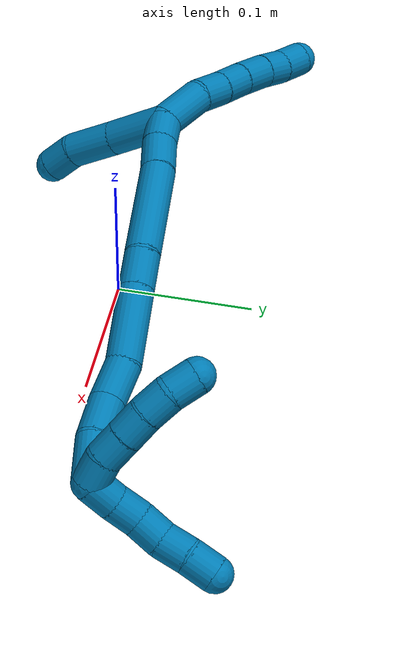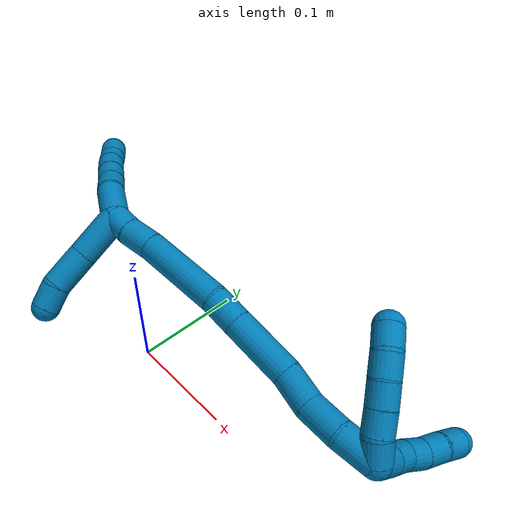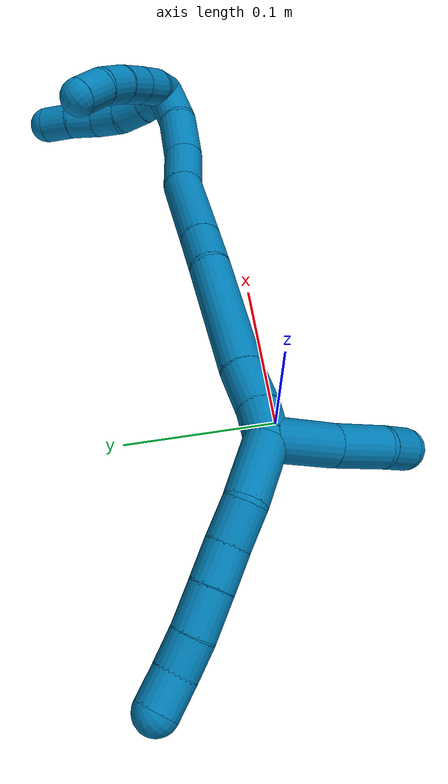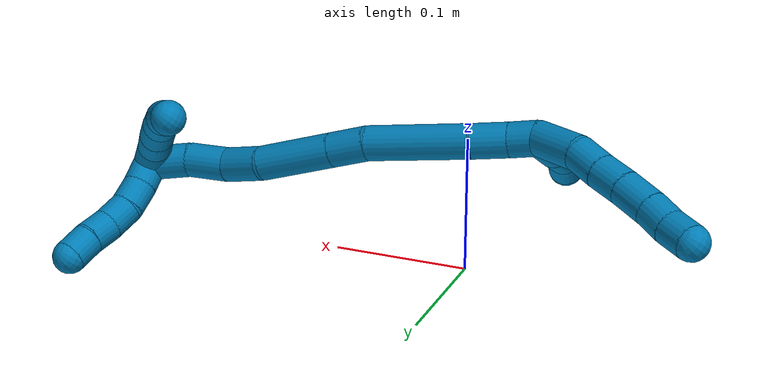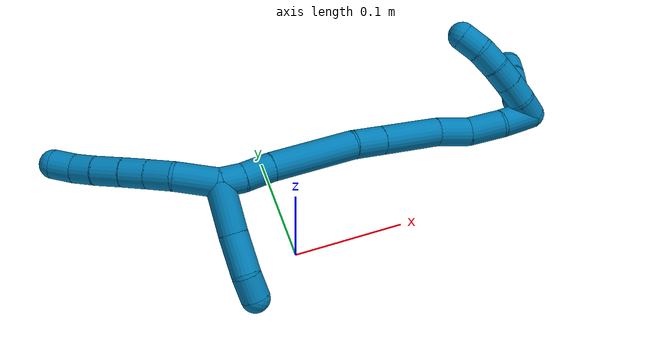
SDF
<sdf version="1.7">
 <world name="default">
  <model name="9">
   <static>0</static>
   <link name="9">
    <collision name="collision-cylinder-e_1_2_8">
     <pose>-0.014139 0.011384 -0.00466 -1.95937 -0.854812 1.1925</pose>
     <geometry><cylinder><radius>0.0125</radius><length>0.037483</length></cylinder></geometry>
     <surface>
      <friction><ode><mu>1.16</mu><mu2>1.16</mu2><slip1>0</slip1><slip2>0</slip2></ode></friction>
      <contact><ode><kp>1e+06</kp><kd>1</kd><max_vel>0</max_vel><min_depth>0.001</min_depth></ode></contact>
     </surface>
    </collision>
    <visual name="visual-cylinder-e_1_2_8">
     <pose>-0.014139 0.011384 -0.00466 -1.95937 -0.854812 1.1925</pose>
     <geometry><cylinder><radius>0.0125</radius><length>0.037483</length></cylinder></geometry>
     <material><ambient>0 0.490196 0.709804 1</ambient></material>
    </visual>
    <collision name="collision-cylinder-e_2_8_9">
     <pose>-0.034957 0.031796 -0.01325 -1.98125 -0.595994 0.876466</pose>
     <geometry><cylinder><radius>0.0125</radius><length>0.023794</length></cylinder></geometry>
     <surface>
      <friction><ode><mu>1.16</mu><mu2>1.16</mu2><slip1>0</slip1><slip2>0</slip2></ode></friction>
      <contact><ode><kp>1e+06</kp><kd>1</kd><max_vel>0</max_vel><min_depth>0.001</min_depth></ode></contact>
     </surface>
    </collision>
    <visual name="visual-cylinder-e_2_8_9">
     <pose>-0.034957 0.031796 -0.01325 -1.98125 -0.595994 0.876466</pose>
     <geometry><cylinder><radius>0.0125</radius><length>0.023794</length></cylinder></geometry>
     <material><ambient>0 0.490196 0.709804 1</ambient></material>
    </visual>
    <collision name="collision-cylinder-e_3_9_10">
     <pose>-0.048427 0.049059 -0.020956 -2.00094 -0.643329 0.958289</pose>
     <geometry><cylinder><radius>0.0125</radius><length>0.022646</length></cylinder></geometry>
     <surface>
      <friction><ode><mu>1.16</mu><mu2>1.16</mu2><slip1>0</slip1><slip2>0</slip2></ode></friction>
      <contact><ode><kp>1e+06</kp><kd>1</kd><max_vel>0</max_vel><min_depth>0.001</min_depth></ode></contact>
     </surface>
    </collision>
    <visual name="visual-cylinder-e_3_9_10">
     <pose>-0.048427 0.049059 -0.020956 -2.00094 -0.643329 0.958289</pose>
     <geometry><cylinder><radius>0.0125</radius><length>0.022646</length></cylinder></geometry>
     <material><ambient>0 0.490196 0.709804 1</ambient></material>
    </visual>
    <collision name="collision-cylinder-e_4_10_11">
     <pose>-0.062351 0.066783 -0.029162 -2.00738 -0.597825 0.901248</pose>
     <geometry><cylinder><radius>0.0125</radius><length>0.02534</length></cylinder></geometry>
     <surface>
      <friction><ode><mu>1.16</mu><mu2>1.16</mu2><slip1>0</slip1><slip2>0</slip2></ode></friction>
      <contact><ode><kp>1e+06</kp><kd>1</kd><max_vel>0</max_vel><min_depth>0.001</min_depth></ode></contact>
     </surface>
    </collision>
    <visual name="visual-cylinder-e_4_10_11">
     <pose>-0.062351 0.066783 -0.029162 -2.00738 -0.597825 0.901248</pose>
     <geometry><cylinder><radius>0.0125</radius><length>0.02534</length></cylinder></geometry>
     <material><ambient>0 0.490196 0.709804 1</ambient></material>
    </visual>
    <collision name="collision-cylinder-e_5_11_12">
     <pose>-0.074559 0.08432 -0.036796 -1.94984 -0.530182 0.761623</pose>
     <geometry><cylinder><radius>0.0125</radius><length>0.02008</length></cylinder></geometry>
     <surface>
      <friction><ode><mu>1.16</mu><mu2>1.16</mu2><slip1>0</slip1><slip2>0</slip2></ode></friction>
      <contact><ode><kp>1e+06</kp><kd>1</kd><max_vel>0</max_vel><min_depth>0.001</min_depth></ode></contact>
     </surface>
    </collision>
    <visual name="visual-cylinder-e_5_11_12">
     <pose>-0.074559 0.08432 -0.036796 -1.94984 -0.530182 0.761623</pose>
     <geometry><cylinder><radius>0.0125</radius><length>0.02008</length></cylinder></geometry>
     <material><ambient>0 0.490196 0.709804 1</ambient></material>
    </visual>
    <collision name="collision-cylinder-e_6_12_6">
     <pose>-0.085977 0.100177 -0.042342 -1.86208 -0.660982 0.863961</pose>
     <geometry><cylinder><radius>0.0125</radius><length>0.020658</length></cylinder></geometry>
     <surface>
      <friction><ode><mu>1.16</mu><mu2>1.16</mu2><slip1>0</slip1><slip2>0</slip2></ode></friction>
      <contact><ode><kp>1e+06</kp><kd>1</kd><max_vel>0</max_vel><min_depth>0.001</min_depth></ode></contact>
     </surface>
    </collision>
    <visual name="visual-cylinder-e_6_12_6">
     <pose>-0.085977 0.100177 -0.042342 -1.86208 -0.660982 0.863961</pose>
     <geometry><cylinder><radius>0.0125</radius><length>0.020658</length></cylinder></geometry>
     <material><ambient>0 0.490196 0.709804 1</ambient></material>
    </visual>
    <collision name="collision-cylinder-e_1_2_13">
     <pose>0.008659 -0.01023 -0.016983 2.59945 0.411761 1.28886</pose>
     <geometry><cylinder><radius>0.0125</radius><length>0.043269</length></cylinder></geometry>
     <surface>
      <friction><ode><mu>1.16</mu><mu2>1.16</mu2><slip1>0</slip1><slip2>0</slip2></ode></friction>
      <contact><ode><kp>1e+06</kp><kd>1</kd><max_vel>0</max_vel><min_depth>0.001</min_depth></ode></contact>
     </surface>
    </collision>
    <visual name="visual-cylinder-e_1_2_13">
     <pose>0.008659 -0.01023 -0.016983 2.59945 0.411761 1.28886</pose>
     <geometry><cylinder><radius>0.0125</radius><length>0.043269</length></cylinder></geometry>
     <material><ambient>0 0.490196 0.709804 1</ambient></material>
    </visual>
    <collision name="collision-cylinder-e_2_13_14">
     <pose>0.024519 -0.029543 -0.047132 2.53769 0.42307 1.20722</pose>
     <geometry><cylinder><radius>0.0125</radius><length>0.035084</length></cylinder></geometry>
     <surface>
      <friction><ode><mu>1.16</mu><mu2>1.16</mu2><slip1>0</slip1><slip2>0</slip2></ode></friction>
      <contact><ode><kp>1e+06</kp><kd>1</kd><max_vel>0</max_vel><min_depth>0.001</min_depth></ode></contact>
     </surface>
    </collision>
    <visual name="visual-cylinder-e_2_13_14">
     <pose>0.024519 -0.029543 -0.047132 2.53769 0.42307 1.20722</pose>
     <geometry><cylinder><radius>0.0125</radius><length>0.035084</length></cylinder></geometry>
     <material><ambient>0 0.490196 0.709804 1</ambient></material>
    </visual>
    <collision name="collision-cylinder-e_3_14_5">
     <pose>0.038165 -0.041857 -0.068372 2.76095 0.637732 2.08509</pose>
     <geometry><cylinder><radius>0.0125</radius><length>0.021647</length></cylinder></geometry>
     <surface>
      <friction><ode><mu>1.16</mu><mu2>1.16</mu2><slip1>0</slip1><slip2>0</slip2></ode></friction>
      <contact><ode><kp>1e+06</kp><kd>1</kd><max_vel>0</max_vel><min_depth>0.001</min_depth></ode></contact>
     </surface>
    </collision>
    <visual name="visual-cylinder-e_3_14_5">
     <pose>0.038165 -0.041857 -0.068372 2.76095 0.637732 2.08509</pose>
     <geometry><cylinder><radius>0.0125</radius><length>0.021647</length></cylinder></geometry>
     <material><ambient>0 0.490196 0.709804 1</ambient></material>
    </visual>
    <collision name="collision-cylinder-e_1_2_15">
     <pose>0.00902 -0.001197 0.004646 0.252247 1.08197 0.152058</pose>
     <geometry><cylinder><radius>0.0125</radius><length>0.020434</length></cylinder></geometry>
     <surface>
      <friction><ode><mu>1.16</mu><mu2>1.16</mu2><slip1>0</slip1><slip2>0</slip2></ode></friction>
      <contact><ode><kp>1e+06</kp><kd>1</kd><max_vel>0</max_vel><min_depth>0.001</min_depth></ode></contact>
     </surface>
    </collision>
    <visual name="visual-cylinder-e_1_2_15">
     <pose>0.00902 -0.001197 0.004646 0.252247 1.08197 0.152058</pose>
     <geometry><cylinder><radius>0.0125</radius><length>0.020434</length></cylinder></geometry>
     <material><ambient>0 0.490196 0.709804 1</ambient></material>
    </visual>
    <collision name="collision-cylinder-e_2_15_16">
     <pose>0.029054 -0.002942 0.016864 0.072185 0.967233 0.037925</pose>
     <geometry><cylinder><radius>0.0125</radius><length>0.026752</length></cylinder></geometry>
     <surface>
      <friction><ode><mu>1.16</mu><mu2>1.16</mu2><slip1>0</slip1><slip2>0</slip2></ode></friction>
      <contact><ode><kp>1e+06</kp><kd>1</kd><max_vel>0</max_vel><min_depth>0.001</min_depth></ode></contact>
     </surface>
    </collision>
    <visual name="visual-cylinder-e_2_15_16">
     <pose>0.029054 -0.002942 0.016864 0.072185 0.967233 0.037925</pose>
     <geometry><cylinder><radius>0.0125</radius><length>0.026752</length></cylinder></geometry>
     <material><ambient>0 0.490196 0.709804 1</ambient></material>
    </visual>
    <collision name="collision-cylinder-e_3_16_17">
     <pose>0.07223 -0.007832 0.043775 0.220861 1.01853 0.123673</pose>
     <geometry><cylinder><radius>0.0125</radius><length>0.075561</length></cylinder></geometry>
     <surface>
      <friction><ode><mu>1.16</mu><mu2>1.16</mu2><slip1>0</slip1><slip2>0</slip2></ode></friction>
      <contact><ode><kp>1e+06</kp><kd>1</kd><max_vel>0</max_vel><min_depth>0.001</min_depth></ode></contact>
     </surface>
    </collision>
    <visual name="visual-cylinder-e_3_16_17">
     <pose>0.07223 -0.007832 0.043775 0.220861 1.01853 0.123673</pose>
     <geometry><cylinder><radius>0.0125</radius><length>0.075561</length></cylinder></geometry>
     <material><ambient>0 0.490196 0.709804 1</ambient></material>
    </visual>
    <collision name="collision-cylinder-e_4_17_18">
     <pose>0.11706 -0.012747 0.068269 0.110647 1.18211 0.074295</pose>
     <geometry><cylinder><radius>0.0125</radius><length>0.027373</length></cylinder></geometry>
     <surface>
      <friction><ode><mu>1.16</mu><mu2>1.16</mu2><slip1>0</slip1><slip2>0</slip2></ode></friction>
      <contact><ode><kp>1e+06</kp><kd>1</kd><max_vel>0</max_vel><min_depth>0.001</min_depth></ode></contact>
     </surface>
    </collision>
    <visual name="visual-cylinder-e_4_17_18">
     <pose>0.11706 -0.012747 0.068269 0.110647 1.18211 0.074295</pose>
     <geometry><cylinder><radius>0.0125</radius><length>0.027373</length></cylinder></geometry>
     <material><ambient>0 0.490196 0.709804 1</ambient></material>
    </visual>
    <collision name="collision-cylinder-e_5_18_19">
     <pose>0.155655 -0.01439 0.084081 0.100077 1.17909 0.066972</pose>
     <geometry><cylinder><radius>0.0125</radius><length>0.056108</length></cylinder></geometry>
     <surface>
      <friction><ode><mu>1.16</mu><mu2>1.16</mu2><slip1>0</slip1><slip2>0</slip2></ode></friction>
      <contact><ode><kp>1e+06</kp><kd>1</kd><max_vel>0</max_vel><min_depth>0.001</min_depth></ode></contact>
     </surface>
    </collision>
    <visual name="visual-cylinder-e_5_18_19">
     <pose>0.155655 -0.01439 0.084081 0.100077 1.17909 0.066972</pose>
     <geometry><cylinder><radius>0.0125</radius><length>0.056108</length></cylinder></geometry>
     <material><ambient>0 0.490196 0.709804 1</ambient></material>
    </visual>
    <collision name="collision-cylinder-e_6_19_20">
     <pose>0.195506 -0.019236 0.099529 0.667475 1.15777 0.445674</pose>
     <geometry><cylinder><radius>0.0125</radius><length>0.0304</length></cylinder></geometry>
     <surface>
      <friction><ode><mu>1.16</mu><mu2>1.16</mu2><slip1>0</slip1><slip2>0</slip2></ode></friction>
      <contact><ode><kp>1e+06</kp><kd>1</kd><max_vel>0</max_vel><min_depth>0.001</min_depth></ode></contact>
     </surface>
    </collision>
    <visual name="visual-cylinder-e_6_19_20">
     <pose>0.195506 -0.019236 0.099529 0.667475 1.15777 0.445674</pose>
     <geometry><cylinder><radius>0.0125</radius><length>0.0304</length></cylinder></geometry>
     <material><ambient>0 0.490196 0.709804 1</ambient></material>
    </visual>
    <collision name="collision-cylinder-e_7_20_21">
     <pose>0.222107 -0.026905 0.112659 0.436756 0.94298 0.225327</pose>
     <geometry><cylinder><radius>0.0125</radius><length>0.031334</length></cylinder></geometry>
     <surface>
      <friction><ode><mu>1.16</mu><mu2>1.16</mu2><slip1>0</slip1><slip2>0</slip2></ode></friction>
      <contact><ode><kp>1e+06</kp><kd>1</kd><max_vel>0</max_vel><min_depth>0.001</min_depth></ode></contact>
     </surface>
    </collision>
    <visual name="visual-cylinder-e_7_20_21">
     <pose>0.222107 -0.026905 0.112659 0.436756 0.94298 0.225327</pose>
     <geometry><cylinder><radius>0.0125</radius><length>0.031334</length></cylinder></geometry>
     <material><ambient>0 0.490196 0.709804 1</ambient></material>
    </visual>
    <collision name="collision-cylinder-e_8_21_1">
     <pose>0.248486 -0.031318 0.129285 0.062706 1.02589 0.035326</pose>
     <geometry><cylinder><radius>0.0125</radius><length>0.032038</length></cylinder></geometry>
     <surface>
      <friction><ode><mu>1.16</mu><mu2>1.16</mu2><slip1>0</slip1><slip2>0</slip2></ode></friction>
      <contact><ode><kp>1e+06</kp><kd>1</kd><max_vel>0</max_vel><min_depth>0.001</min_depth></ode></contact>
     </surface>
    </collision>
    <visual name="visual-cylinder-e_8_21_1">
     <pose>0.248486 -0.031318 0.129285 0.062706 1.02589 0.035326</pose>
     <geometry><cylinder><radius>0.0125</radius><length>0.032038</length></cylinder></geometry>
     <material><ambient>0 0.490196 0.709804 1</ambient></material>
    </visual>
    <collision name="collision-cylinder-e_1_1_22">
     <pose>0.265749 -0.022504 0.137983 -1.52679 0.364425 -0.349055</pose>
     <geometry><cylinder><radius>0.0125</radius><length>0.02</length></cylinder></geometry>
     <surface>
      <friction><ode><mu>1.16</mu><mu2>1.16</mu2><slip1>0</slip1><slip2>0</slip2></ode></friction>
      <contact><ode><kp>1e+06</kp><kd>1</kd><max_vel>0</max_vel><min_depth>0.001</min_depth></ode></contact>
     </surface>
    </collision>
    <visual name="visual-cylinder-e_1_1_22">
     <pose>0.265749 -0.022504 0.137983 -1.52679 0.364425 -0.349055</pose>
     <geometry><cylinder><radius>0.0125</radius><length>0.02</length></cylinder></geometry>
     <material><ambient>0 0.490196 0.709804 1</ambient></material>
    </visual>
    <collision name="collision-cylinder-e_2_22_23">
     <pose>0.272363 -0.003802 0.140106 -1.38997 0.309988 -0.259083</pose>
     <geometry><cylinder><radius>0.0125</radius><length>0.02</length></cylinder></geometry>
     <surface>
      <friction><ode><mu>1.16</mu><mu2>1.16</mu2><slip1>0</slip1><slip2>0</slip2></ode></friction>
      <contact><ode><kp>1e+06</kp><kd>1</kd><max_vel>0</max_vel><min_depth>0.001</min_depth></ode></contact>
     </surface>
    </collision>
    <visual name="visual-cylinder-e_2_22_23">
     <pose>0.272363 -0.003802 0.140106 -1.38997 0.309988 -0.259083</pose>
     <geometry><cylinder><radius>0.0125</radius><length>0.02</length></cylinder></geometry>
     <material><ambient>0 0.490196 0.709804 1</ambient></material>
    </visual>
    <collision name="collision-cylinder-e_3_23_24">
     <pose>0.279625 0.013837 0.145543 -1.14778 0.434638 -0.283573</pose>
     <geometry><cylinder><radius>0.0125</radius><length>0.02</length></cylinder></geometry>
     <surface>
      <friction><ode><mu>1.16</mu><mu2>1.16</mu2><slip1>0</slip1><slip2>0</slip2></ode></friction>
      <contact><ode><kp>1e+06</kp><kd>1</kd><max_vel>0</max_vel><min_depth>0.001</min_depth></ode></contact>
     </surface>
    </collision>
    <visual name="visual-cylinder-e_3_23_24">
     <pose>0.279625 0.013837 0.145543 -1.14778 0.434638 -0.283573</pose>
     <geometry><cylinder><radius>0.0125</radius><length>0.02</length></cylinder></geometry>
     <material><ambient>0 0.490196 0.709804 1</ambient></material>
    </visual>
    <collision name="collision-cylinder-e_4_24_25">
     <pose>0.286349 0.030335 0.154364 -1.01605 0.254119 -0.142013</pose>
     <geometry><cylinder><radius>0.0125</radius><length>0.02</length></cylinder></geometry>
     <surface>
      <friction><ode><mu>1.16</mu><mu2>1.16</mu2><slip1>0</slip1><slip2>0</slip2></ode></friction>
      <contact><ode><kp>1e+06</kp><kd>1</kd><max_vel>0</max_vel><min_depth>0.001</min_depth></ode></contact>
     </surface>
    </collision>
    <visual name="visual-cylinder-e_4_24_25">
     <pose>0.286349 0.030335 0.154364 -1.01605 0.254119 -0.142013</pose>
     <geometry><cylinder><radius>0.0125</radius><length>0.02</length></cylinder></geometry>
     <material><ambient>0 0.490196 0.709804 1</ambient></material>
    </visual>
    <collision name="collision-cylinder-e_5_25_4">
     <pose>0.292017 0.047199 0.163394 -1.14356 0.320854 -0.207505</pose>
     <geometry><cylinder><radius>0.0125</radius><length>0.02</length></cylinder></geometry>
     <surface>
      <friction><ode><mu>1.16</mu><mu2>1.16</mu2><slip1>0</slip1><slip2>0</slip2></ode></friction>
      <contact><ode><kp>1e+06</kp><kd>1</kd><max_vel>0</max_vel><min_depth>0.001</min_depth></ode></contact>
     </surface>
    </collision>
    <visual name="visual-cylinder-e_5_25_4">
     <pose>0.292017 0.047199 0.163394 -1.14356 0.320854 -0.207505</pose>
     <geometry><cylinder><radius>0.0125</radius><length>0.02</length></cylinder></geometry>
     <material><ambient>0 0.490196 0.709804 1</ambient></material>
    </visual>
    <collision name="collision-cylinder-e_1_1_26">
     <pose>0.253432 -0.031719 0.142407 -0.024815 -1.06594 0.014639</pose>
     <geometry><cylinder><radius>0.0125</radius><length>0.02</length></cylinder></geometry>
     <surface>
      <friction><ode><mu>1.16</mu><mu2>1.16</mu2><slip1>0</slip1><slip2>0</slip2></ode></friction>
      <contact><ode><kp>1e+06</kp><kd>1</kd><max_vel>0</max_vel><min_depth>0.001</min_depth></ode></contact>
     </surface>
    </collision>
    <visual name="visual-cylinder-e_1_1_26">
     <pose>0.253432 -0.031719 0.142407 -0.024815 -1.06594 0.014639</pose>
     <geometry><cylinder><radius>0.0125</radius><length>0.02</length></cylinder></geometry>
     <material><ambient>0 0.490196 0.709804 1</ambient></material>
    </visual>
    <collision name="collision-cylinder-e_2_26_27">
     <pose>0.236442 -0.028993 0.152277 -0.477564 -0.968073 0.25458</pose>
     <geometry><cylinder><radius>0.0125</radius><length>0.02</length></cylinder></geometry>
     <surface>
      <friction><ode><mu>1.16</mu><mu2>1.16</mu2><slip1>0</slip1><slip2>0</slip2></ode></friction>
      <contact><ode><kp>1e+06</kp><kd>1</kd><max_vel>0</max_vel><min_depth>0.001</min_depth></ode></contact>
     </surface>
    </collision>
    <visual name="visual-cylinder-e_2_26_27">
     <pose>0.236442 -0.028993 0.152277 -0.477564 -0.968073 0.25458</pose>
     <geometry><cylinder><radius>0.0125</radius><length>0.02</length></cylinder></geometry>
     <material><ambient>0 0.490196 0.709804 1</ambient></material>
    </visual>
    <collision name="collision-cylinder-e_3_27_28">
     <pose>0.21979 -0.023656 0.161974 -0.529946 -0.999885 0.294299</pose>
     <geometry><cylinder><radius>0.0125</radius><length>0.02</length></cylinder></geometry>
     <surface>
      <friction><ode><mu>1.16</mu><mu2>1.16</mu2><slip1>0</slip1><slip2>0</slip2></ode></friction>
      <contact><ode><kp>1e+06</kp><kd>1</kd><max_vel>0</max_vel><min_depth>0.001</min_depth></ode></contact>
     </surface>
    </collision>
    <visual name="visual-cylinder-e_3_27_28">
     <pose>0.21979 -0.023656 0.161974 -0.529946 -0.999885 0.294299</pose>
     <geometry><cylinder><radius>0.0125</radius><length>0.02</length></cylinder></geometry>
     <material><ambient>0 0.490196 0.709804 1</ambient></material>
    </visual>
    <collision name="collision-cylinder-e_4_28_29">
     <pose>0.203223 -0.016935 0.170835 -0.759946 -0.953108 0.406655</pose>
     <geometry><cylinder><radius>0.0125</radius><length>0.02</length></cylinder></geometry>
     <surface>
      <friction><ode><mu>1.16</mu><mu2>1.16</mu2><slip1>0</slip1><slip2>0</slip2></ode></friction>
      <contact><ode><kp>1e+06</kp><kd>1</kd><max_vel>0</max_vel><min_depth>0.001</min_depth></ode></contact>
     </surface>
    </collision>
    <visual name="visual-cylinder-e_4_28_29">
     <pose>0.203223 -0.016935 0.170835 -0.759946 -0.953108 0.406655</pose>
     <geometry><cylinder><radius>0.0125</radius><length>0.02</length></cylinder></geometry>
     <material><ambient>0 0.490196 0.709804 1</ambient></material>
    </visual>
    <collision name="collision-cylinder-e_5_29_3">
     <pose>0.187544 -0.006923 0.177694 -1.15471 -0.85211 0.574902</pose>
     <geometry><cylinder><radius>0.0125</radius><length>0.02</length></cylinder></geometry>
     <surface>
      <friction><ode><mu>1.16</mu><mu2>1.16</mu2><slip1>0</slip1><slip2>0</slip2></ode></friction>
      <contact><ode><kp>1e+06</kp><kd>1</kd><max_vel>0</max_vel><min_depth>0.001</min_depth></ode></contact>
     </surface>
    </collision>
    <visual name="visual-cylinder-e_5_29_3">
     <pose>0.187544 -0.006923 0.177694 -1.15471 -0.85211 0.574902</pose>
     <geometry><cylinder><radius>0.0125</radius><length>0.02</length></cylinder></geometry>
     <material><ambient>0 0.490196 0.709804 1</ambient></material>
    </visual>
    <collision name="collision-sphere-3">
     <pose>0.180018 -0.000901 0.180355 0 -0 0</pose>
     <geometry><sphere><radius>0.0125</radius></sphere></geometry>
     <surface>
      <friction><ode><mu>1.16</mu><mu2>1.16</mu2><slip1>0</slip1><slip2>0</slip2></ode></friction>
      <contact><ode><kp>1e+06</kp><kd>1</kd><max_vel>0</max_vel><min_depth>0.001</min_depth></ode></contact>
     </surface>
    </collision>
    <visual name="visual-sphere-3">
     <pose>0.180018 -0.000901 0.180355 0 -0 0</pose>
     <geometry><sphere><radius>0.0125</radius></sphere></geometry>
     <material><ambient>0 0.490196 0.709804 1</ambient></material>
    </visual>
    <collision name="collision-sphere-29">
     <pose>0.195071 -0.012945 0.175033 0 -0 0</pose>
     <geometry><sphere><radius>0.0125</radius></sphere></geometry>
     <surface>
      <friction><ode><mu>1.16</mu><mu2>1.16</mu2><slip1>0</slip1><slip2>0</slip2></ode></friction>
      <contact><ode><kp>1e+06</kp><kd>1</kd><max_vel>0</max_vel><min_depth>0.001</min_depth></ode></contact>
     </surface>
    </collision>
    <visual name="visual-sphere-29">
     <pose>0.195071 -0.012945 0.175033 0 -0 0</pose>
     <geometry><sphere><radius>0.0125</radius></sphere></geometry>
     <material><ambient>0 0.490196 0.709804 1</ambient></material>
    </visual>
    <collision name="collision-sphere-28">
     <pose>0.211376 -0.020924 0.166637 0 -0 0</pose>
     <geometry><sphere><radius>0.0125</radius></sphere></geometry>
     <surface>
      <friction><ode><mu>1.16</mu><mu2>1.16</mu2><slip1>0</slip1><slip2>0</slip2></ode></friction>
      <contact><ode><kp>1e+06</kp><kd>1</kd><max_vel>0</max_vel><min_depth>0.001</min_depth></ode></contact>
     </surface>
    </collision>
    <visual name="visual-sphere-28">
     <pose>0.211376 -0.020924 0.166637 0 -0 0</pose>
     <geometry><sphere><radius>0.0125</radius></sphere></geometry>
     <material><ambient>0 0.490196 0.709804 1</ambient></material>
    </visual>
    <collision name="collision-sphere-27">
     <pose>0.228204 -0.026388 0.157311 0 -0 0</pose>
     <geometry><sphere><radius>0.0125</radius></sphere></geometry>
     <surface>
      <friction><ode><mu>1.16</mu><mu2>1.16</mu2><slip1>0</slip1><slip2>0</slip2></ode></friction>
      <contact><ode><kp>1e+06</kp><kd>1</kd><max_vel>0</max_vel><min_depth>0.001</min_depth></ode></contact>
     </surface>
    </collision>
    <visual name="visual-sphere-27">
     <pose>0.228204 -0.026388 0.157311 0 -0 0</pose>
     <geometry><sphere><radius>0.0125</radius></sphere></geometry>
     <material><ambient>0 0.490196 0.709804 1</ambient></material>
    </visual>
    <collision name="collision-sphere-26">
     <pose>0.24468 -0.031599 0.147242 0 -0 0</pose>
     <geometry><sphere><radius>0.0125</radius></sphere></geometry>
     <surface>
      <friction><ode><mu>1.16</mu><mu2>1.16</mu2><slip1>0</slip1><slip2>0</slip2></ode></friction>
      <contact><ode><kp>1e+06</kp><kd>1</kd><max_vel>0</max_vel><min_depth>0.001</min_depth></ode></contact>
     </surface>
    </collision>
    <visual name="visual-sphere-26">
     <pose>0.24468 -0.031599 0.147242 0 -0 0</pose>
     <geometry><sphere><radius>0.0125</radius></sphere></geometry>
     <material><ambient>0 0.490196 0.709804 1</ambient></material>
    </visual>
    <collision name="collision-sphere-4">
     <pose>0.295171 0.055836 0.167327 0 -0 0</pose>
     <geometry><sphere><radius>0.0125</radius></sphere></geometry>
     <surface>
      <friction><ode><mu>1.16</mu><mu2>1.16</mu2><slip1>0</slip1><slip2>0</slip2></ode></friction>
      <contact><ode><kp>1e+06</kp><kd>1</kd><max_vel>0</max_vel><min_depth>0.001</min_depth></ode></contact>
     </surface>
    </collision>
    <visual name="visual-sphere-4">
     <pose>0.295171 0.055836 0.167327 0 -0 0</pose>
     <geometry><sphere><radius>0.0125</radius></sphere></geometry>
     <material><ambient>0 0.490196 0.709804 1</ambient></material>
    </visual>
    <collision name="collision-sphere-25">
     <pose>0.288863 0.038562 0.159462 0 -0 0</pose>
     <geometry><sphere><radius>0.0125</radius></sphere></geometry>
     <surface>
      <friction><ode><mu>1.16</mu><mu2>1.16</mu2><slip1>0</slip1><slip2>0</slip2></ode></friction>
      <contact><ode><kp>1e+06</kp><kd>1</kd><max_vel>0</max_vel><min_depth>0.001</min_depth></ode></contact>
     </surface>
    </collision>
    <visual name="visual-sphere-25">
     <pose>0.288863 0.038562 0.159462 0 -0 0</pose>
     <geometry><sphere><radius>0.0125</radius></sphere></geometry>
     <material><ambient>0 0.490196 0.709804 1</ambient></material>
    </visual>
    <collision name="collision-sphere-24">
     <pose>0.283835 0.022108 0.149266 0 -0 0</pose>
     <geometry><sphere><radius>0.0125</radius></sphere></geometry>
     <surface>
      <friction><ode><mu>1.16</mu><mu2>1.16</mu2><slip1>0</slip1><slip2>0</slip2></ode></friction>
      <contact><ode><kp>1e+06</kp><kd>1</kd><max_vel>0</max_vel><min_depth>0.001</min_depth></ode></contact>
     </surface>
    </collision>
    <visual name="visual-sphere-24">
     <pose>0.283835 0.022108 0.149266 0 -0 0</pose>
     <geometry><sphere><radius>0.0125</radius></sphere></geometry>
     <material><ambient>0 0.490196 0.709804 1</ambient></material>
    </visual>
    <collision name="collision-sphere-23">
     <pose>0.275414 0.005566 0.141819 0 -0 0</pose>
     <geometry><sphere><radius>0.0125</radius></sphere></geometry>
     <surface>
      <friction><ode><mu>1.16</mu><mu2>1.16</mu2><slip1>0</slip1><slip2>0</slip2></ode></friction>
      <contact><ode><kp>1e+06</kp><kd>1</kd><max_vel>0</max_vel><min_depth>0.001</min_depth></ode></contact>
     </surface>
    </collision>
    <visual name="visual-sphere-23">
     <pose>0.275414 0.005566 0.141819 0 -0 0</pose>
     <geometry><sphere><radius>0.0125</radius></sphere></geometry>
     <material><ambient>0 0.490196 0.709804 1</ambient></material>
    </visual>
    <collision name="collision-sphere-22">
     <pose>0.269313 -0.01317 0.138394 0 -0 0</pose>
     <geometry><sphere><radius>0.0125</radius></sphere></geometry>
     <surface>
      <friction><ode><mu>1.16</mu><mu2>1.16</mu2><slip1>0</slip1><slip2>0</slip2></ode></friction>
      <contact><ode><kp>1e+06</kp><kd>1</kd><max_vel>0</max_vel><min_depth>0.001</min_depth></ode></contact>
     </surface>
    </collision>
    <visual name="visual-sphere-22">
     <pose>0.269313 -0.01317 0.138394 0 -0 0</pose>
     <geometry><sphere><radius>0.0125</radius></sphere></geometry>
     <material><ambient>0 0.490196 0.709804 1</ambient></material>
    </visual>
    <collision name="collision-sphere-1">
     <pose>0.262185 -0.031839 0.137572 0 -0 0</pose>
     <geometry><sphere><radius>0.0125</radius></sphere></geometry>
     <surface>
      <friction><ode><mu>1.16</mu><mu2>1.16</mu2><slip1>0</slip1><slip2>0</slip2></ode></friction>
      <contact><ode><kp>1e+06</kp><kd>1</kd><max_vel>0</max_vel><min_depth>0.001</min_depth></ode></contact>
     </surface>
    </collision>
    <visual name="visual-sphere-1">
     <pose>0.262185 -0.031839 0.137572 0 -0 0</pose>
     <geometry><sphere><radius>0.0125</radius></sphere></geometry>
     <material><ambient>0 0.490196 0.709804 1</ambient></material>
    </visual>
    <collision name="collision-sphere-21">
     <pose>0.234787 -0.030798 0.120998 0 -0 0</pose>
     <geometry><sphere><radius>0.0125</radius></sphere></geometry>
     <surface>
      <friction><ode><mu>1.16</mu><mu2>1.16</mu2><slip1>0</slip1><slip2>0</slip2></ode></friction>
      <contact><ode><kp>1e+06</kp><kd>1</kd><max_vel>0</max_vel><min_depth>0.001</min_depth></ode></contact>
     </surface>
    </collision>
    <visual name="visual-sphere-21">
     <pose>0.234787 -0.030798 0.120998 0 -0 0</pose>
     <geometry><sphere><radius>0.0125</radius></sphere></geometry>
     <material><ambient>0 0.490196 0.709804 1</ambient></material>
    </visual>
    <collision name="collision-sphere-12">
     <pose>-0.079636 0.092367 -0.040001 0 -0 0</pose>
     <geometry><sphere><radius>0.0125</radius></sphere></geometry>
     <surface>
      <friction><ode><mu>1.16</mu><mu2>1.16</mu2><slip1>0</slip1><slip2>0</slip2></ode></friction>
      <contact><ode><kp>1e+06</kp><kd>1</kd><max_vel>0</max_vel><min_depth>0.001</min_depth></ode></contact>
     </surface>
    </collision>
    <visual name="visual-sphere-12">
     <pose>-0.079636 0.092367 -0.040001 0 -0 0</pose>
     <geometry><sphere><radius>0.0125</radius></sphere></geometry>
     <material><ambient>0 0.490196 0.709804 1</ambient></material>
    </visual>
    <collision name="collision-sphere-11">
     <pose>-0.069482 0.076273 -0.033591 0 -0 0</pose>
     <geometry><sphere><radius>0.0125</radius></sphere></geometry>
     <surface>
      <friction><ode><mu>1.16</mu><mu2>1.16</mu2><slip1>0</slip1><slip2>0</slip2></ode></friction>
      <contact><ode><kp>1e+06</kp><kd>1</kd><max_vel>0</max_vel><min_depth>0.001</min_depth></ode></contact>
     </surface>
    </collision>
    <visual name="visual-sphere-11">
     <pose>-0.069482 0.076273 -0.033591 0 -0 0</pose>
     <geometry><sphere><radius>0.0125</radius></sphere></geometry>
     <material><ambient>0 0.490196 0.709804 1</ambient></material>
    </visual>
    <collision name="collision-sphere-10">
     <pose>-0.055219 0.057293 -0.024734 0 -0 0</pose>
     <geometry><sphere><radius>0.0125</radius></sphere></geometry>
     <surface>
      <friction><ode><mu>1.16</mu><mu2>1.16</mu2><slip1>0</slip1><slip2>0</slip2></ode></friction>
      <contact><ode><kp>1e+06</kp><kd>1</kd><max_vel>0</max_vel><min_depth>0.001</min_depth></ode></contact>
     </surface>
    </collision>
    <visual name="visual-sphere-10">
     <pose>-0.055219 0.057293 -0.024734 0 -0 0</pose>
     <geometry><sphere><radius>0.0125</radius></sphere></geometry>
     <material><ambient>0 0.490196 0.709804 1</ambient></material>
    </visual>
    <collision name="collision-sphere-9">
     <pose>-0.041635 0.040824 -0.017179 0 -0 0</pose>
     <geometry><sphere><radius>0.0125</radius></sphere></geometry>
     <surface>
      <friction><ode><mu>1.16</mu><mu2>1.16</mu2><slip1>0</slip1><slip2>0</slip2></ode></friction>
      <contact><ode><kp>1e+06</kp><kd>1</kd><max_vel>0</max_vel><min_depth>0.001</min_depth></ode></contact>
     </surface>
    </collision>
    <visual name="visual-sphere-9">
     <pose>-0.041635 0.040824 -0.017179 0 -0 0</pose>
     <geometry><sphere><radius>0.0125</radius></sphere></geometry>
     <material><ambient>0 0.490196 0.709804 1</ambient></material>
    </visual>
    <collision name="collision-sphere-2">
     <geometry><sphere><radius>0.0125</radius></sphere></geometry>
     <surface>
      <friction><ode><mu>1.16</mu><mu2>1.16</mu2><slip1>0</slip1><slip2>0</slip2></ode></friction>
      <contact><ode><kp>1e+06</kp><kd>1</kd><max_vel>0</max_vel><min_depth>0.001</min_depth></ode></contact>
     </surface>
    </collision>
    <visual name="visual-sphere-2">
     <geometry><sphere><radius>0.0125</radius></sphere></geometry>
     <material><ambient>0 0.490196 0.709804 1</ambient></material>
    </visual>
    <collision name="collision-sphere-19">
     <pose>0.181584 -0.01546 0.094737 0 -0 0</pose>
     <geometry><sphere><radius>0.0125</radius></sphere></geometry>
     <surface>
      <friction><ode><mu>1.16</mu><mu2>1.16</mu2><slip1>0</slip1><slip2>0</slip2></ode></friction>
      <contact><ode><kp>1e+06</kp><kd>1</kd><max_vel>0</max_vel><min_depth>0.001</min_depth></ode></contact>
     </surface>
    </collision>
    <visual name="visual-sphere-19">
     <pose>0.181584 -0.01546 0.094737 0 -0 0</pose>
     <geometry><sphere><radius>0.0125</radius></sphere></geometry>
     <material><ambient>0 0.490196 0.709804 1</ambient></material>
    </visual>
    <collision name="collision-sphere-8">
     <pose>-0.028279 0.022768 -0.009321 0 -0 0</pose>
     <geometry><sphere><radius>0.0125</radius></sphere></geometry>
     <surface>
      <friction><ode><mu>1.16</mu><mu2>1.16</mu2><slip1>0</slip1><slip2>0</slip2></ode></friction>
      <contact><ode><kp>1e+06</kp><kd>1</kd><max_vel>0</max_vel><min_depth>0.001</min_depth></ode></contact>
     </surface>
    </collision>
    <visual name="visual-sphere-8">
     <pose>-0.028279 0.022768 -0.009321 0 -0 0</pose>
     <geometry><sphere><radius>0.0125</radius></sphere></geometry>
     <material><ambient>0 0.490196 0.709804 1</ambient></material>
    </visual>
    <collision name="collision-sphere-6">
     <pose>-0.092318 0.107987 -0.044684 0 -0 0</pose>
     <geometry><sphere><radius>0.0125</radius></sphere></geometry>
     <surface>
      <friction><ode><mu>1.16</mu><mu2>1.16</mu2><slip1>0</slip1><slip2>0</slip2></ode></friction>
      <contact><ode><kp>1e+06</kp><kd>1</kd><max_vel>0</max_vel><min_depth>0.001</min_depth></ode></contact>
     </surface>
    </collision>
    <visual name="visual-sphere-6">
     <pose>-0.092318 0.107987 -0.044684 0 -0 0</pose>
     <geometry><sphere><radius>0.0125</radius></sphere></geometry>
     <material><ambient>0 0.490196 0.709804 1</ambient></material>
    </visual>
    <collision name="collision-sphere-13">
     <pose>0.017317 -0.02046 -0.033966 0 -0 0</pose>
     <geometry><sphere><radius>0.0125</radius></sphere></geometry>
     <surface>
      <friction><ode><mu>1.16</mu><mu2>1.16</mu2><slip1>0</slip1><slip2>0</slip2></ode></friction>
      <contact><ode><kp>1e+06</kp><kd>1</kd><max_vel>0</max_vel><min_depth>0.001</min_depth></ode></contact>
     </surface>
    </collision>
    <visual name="visual-sphere-13">
     <pose>0.017317 -0.02046 -0.033966 0 -0 0</pose>
     <geometry><sphere><radius>0.0125</radius></sphere></geometry>
     <material><ambient>0 0.490196 0.709804 1</ambient></material>
    </visual>
    <collision name="collision-sphere-14">
     <pose>0.031721 -0.038626 -0.060298 0 -0 0</pose>
     <geometry><sphere><radius>0.0125</radius></sphere></geometry>
     <surface>
      <friction><ode><mu>1.16</mu><mu2>1.16</mu2><slip1>0</slip1><slip2>0</slip2></ode></friction>
      <contact><ode><kp>1e+06</kp><kd>1</kd><max_vel>0</max_vel><min_depth>0.001</min_depth></ode></contact>
     </surface>
    </collision>
    <visual name="visual-sphere-14">
     <pose>0.031721 -0.038626 -0.060298 0 -0 0</pose>
     <geometry><sphere><radius>0.0125</radius></sphere></geometry>
     <material><ambient>0 0.490196 0.709804 1</ambient></material>
    </visual>
    <collision name="collision-sphere-5">
     <pose>0.04461 -0.045088 -0.076446 0 -0 0</pose>
     <geometry><sphere><radius>0.0125</radius></sphere></geometry>
     <surface>
      <friction><ode><mu>1.16</mu><mu2>1.16</mu2><slip1>0</slip1><slip2>0</slip2></ode></friction>
      <contact><ode><kp>1e+06</kp><kd>1</kd><max_vel>0</max_vel><min_depth>0.001</min_depth></ode></contact>
     </surface>
    </collision>
    <visual name="visual-sphere-5">
     <pose>0.04461 -0.045088 -0.076446 0 -0 0</pose>
     <geometry><sphere><radius>0.0125</radius></sphere></geometry>
     <material><ambient>0 0.490196 0.709804 1</ambient></material>
    </visual>
    <collision name="collision-sphere-15">
     <pose>0.018041 -0.002395 0.009292 0 -0 0</pose>
     <geometry><sphere><radius>0.0125</radius></sphere></geometry>
     <surface>
      <friction><ode><mu>1.16</mu><mu2>1.16</mu2><slip1>0</slip1><slip2>0</slip2></ode></friction>
      <contact><ode><kp>1e+06</kp><kd>1</kd><max_vel>0</max_vel><min_depth>0.001</min_depth></ode></contact>
     </surface>
    </collision>
    <visual name="visual-sphere-15">
     <pose>0.018041 -0.002395 0.009292 0 -0 0</pose>
     <geometry><sphere><radius>0.0125</radius></sphere></geometry>
     <material><ambient>0 0.490196 0.709804 1</ambient></material>
    </visual>
    <collision name="collision-sphere-16">
     <pose>0.040066 -0.00349 0.024436 0 -0 0</pose>
     <geometry><sphere><radius>0.0125</radius></sphere></geometry>
     <surface>
      <friction><ode><mu>1.16</mu><mu2>1.16</mu2><slip1>0</slip1><slip2>0</slip2></ode></friction>
      <contact><ode><kp>1e+06</kp><kd>1</kd><max_vel>0</max_vel><min_depth>0.001</min_depth></ode></contact>
     </surface>
    </collision>
    <visual name="visual-sphere-16">
     <pose>0.040066 -0.00349 0.024436 0 -0 0</pose>
     <geometry><sphere><radius>0.0125</radius></sphere></geometry>
     <material><ambient>0 0.490196 0.709804 1</ambient></material>
    </visual>
    <collision name="collision-sphere-17">
     <pose>0.104394 -0.012174 0.063114 0 -0 0</pose>
     <geometry><sphere><radius>0.0125</radius></sphere></geometry>
     <surface>
      <friction><ode><mu>1.16</mu><mu2>1.16</mu2><slip1>0</slip1><slip2>0</slip2></ode></friction>
      <contact><ode><kp>1e+06</kp><kd>1</kd><max_vel>0</max_vel><min_depth>0.001</min_depth></ode></contact>
     </surface>
    </collision>
    <visual name="visual-sphere-17">
     <pose>0.104394 -0.012174 0.063114 0 -0 0</pose>
     <geometry><sphere><radius>0.0125</radius></sphere></geometry>
     <material><ambient>0 0.490196 0.709804 1</ambient></material>
    </visual>
    <collision name="collision-sphere-18">
     <pose>0.129725 -0.01332 0.073424 0 -0 0</pose>
     <geometry><sphere><radius>0.0125</radius></sphere></geometry>
     <surface>
      <friction><ode><mu>1.16</mu><mu2>1.16</mu2><slip1>0</slip1><slip2>0</slip2></ode></friction>
      <contact><ode><kp>1e+06</kp><kd>1</kd><max_vel>0</max_vel><min_depth>0.001</min_depth></ode></contact>
     </surface>
    </collision>
    <visual name="visual-sphere-18">
     <pose>0.129725 -0.01332 0.073424 0 -0 0</pose>
     <geometry><sphere><radius>0.0125</radius></sphere></geometry>
     <material><ambient>0 0.490196 0.709804 1</ambient></material>
    </visual>
    <collision name="collision-sphere-20">
     <pose>0.209428 -0.023013 0.104321 0 -0 0</pose>
     <geometry><sphere><radius>0.0125</radius></sphere></geometry>
     <surface>
      <friction><ode><mu>1.16</mu><mu2>1.16</mu2><slip1>0</slip1><slip2>0</slip2></ode></friction>
      <contact><ode><kp>1e+06</kp><kd>1</kd><max_vel>0</max_vel><min_depth>0.001</min_depth></ode></contact>
     </surface>
    </collision>
    <visual name="visual-sphere-20">
     <pose>0.209428 -0.023013 0.104321 0 -0 0</pose>
     <geometry><sphere><radius>0.0125</radius></sphere></geometry>
     <material><ambient>0 0.490196 0.709804 1</ambient></material>
    </visual>
    <inertial>
     <pose>0.111868 0.000291 0.059845 0 -0 0</pose>
     <mass>0.75</mass>
     <inertia>
      <ixx>9.4e-05</ixx>
      <ixy>0</ixy>
      <ixz>0</ixz>
      <iyy>0.000125</iyy>
      <iyz>0</iyz>
      <izz>-5.5e-05</izz>
     </inertia>
    </inertial>
   </link>
   <pose>-0.058351 0.022604 0.116963 -0.65857 0.64666 -0.150706</pose>
  </model>
 </world>
</sdf>
